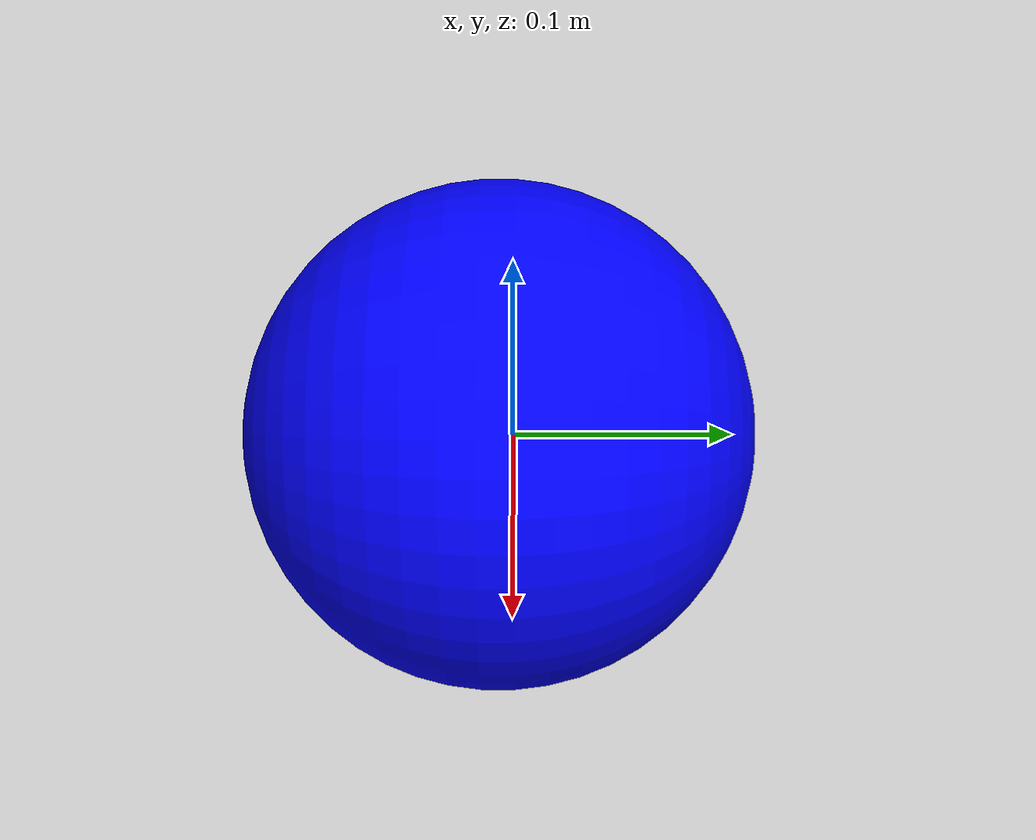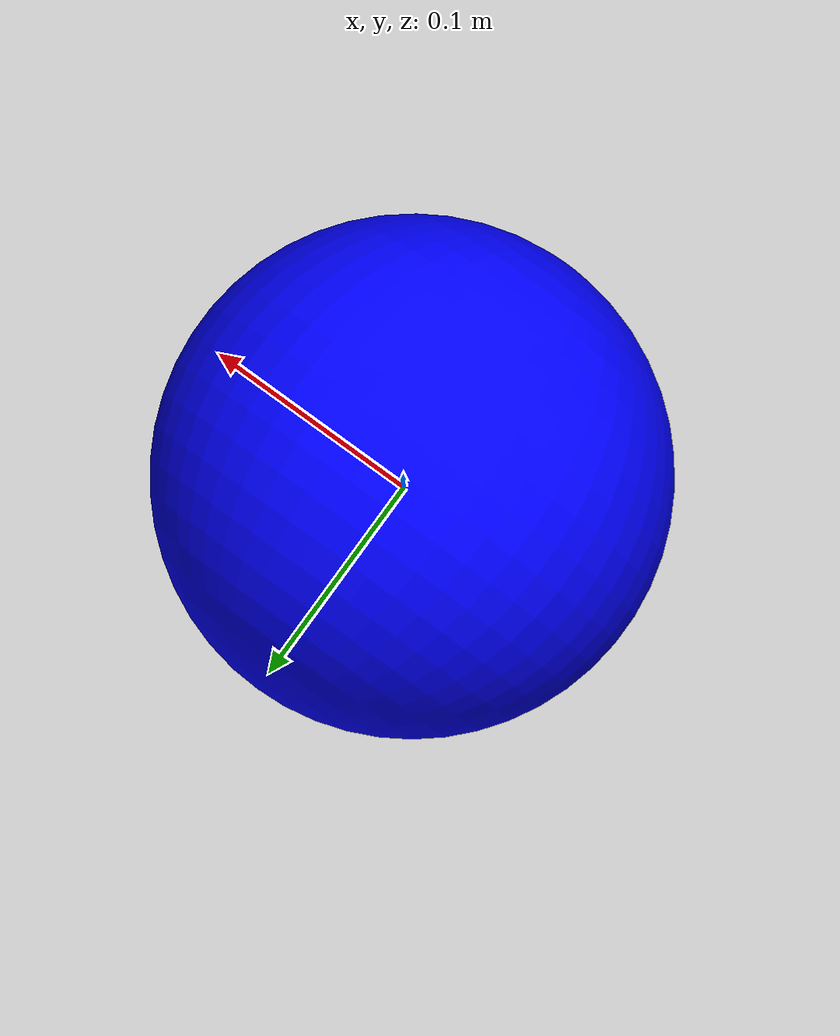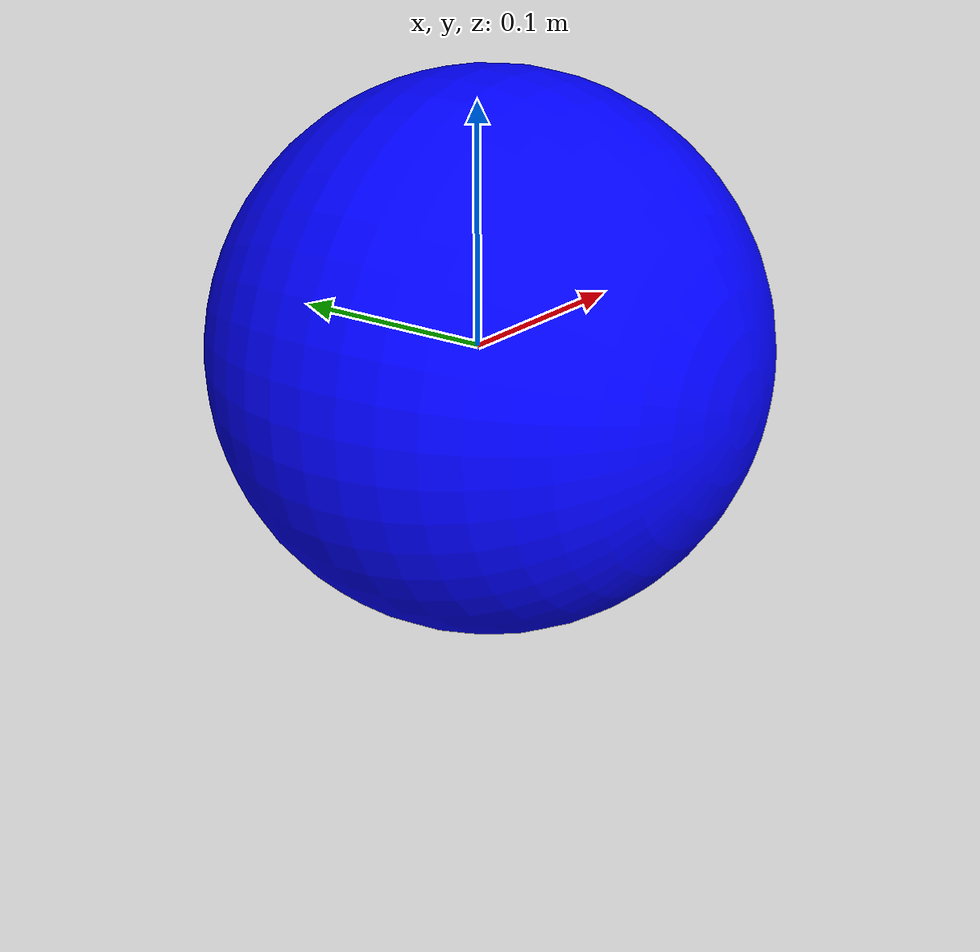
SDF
<?xml version="1.0" encoding="utf-8"?>
<sdf version="1.7">
  <model name="BlueCargo">
    <pose>0 0 0 0 0 0</pose>
    <link name="Ball">
      <gravity>1</gravity>
      <self_collide>0</self_collide>
      <pose>0 0 0 0 0 0</pose>
      <must_be_base_link>1</must_be_base_link>
      <velocity_decay>
        <linear>0.00</linear>
        <angular>0.01</angular>
      </velocity_decay>

      <inertial>
        <mass>0.1</mass>
        <pose>0 0 0 0 0 0</pose>
        <inertia>
          <ixx>0.0</ixx>
          <ixy>0</ixy>
          <ixz>0</ixz>
          <iyy>0.0</iyy>
          <iyz>0</iyz>
          <izz>0.0</izz>
        </inertia>

      </inertial>

      <collision name="Ball_collision">
        <pose>0 -0.12065 0 0 0 0</pose>
        <geometry>
          <mesh>
            <scale>.95 .95 .95</scale>
            <uri>model://BlueCargo/meshes/Ball_col.STL</uri>
          </mesh>
        </geometry>
       <surface>
        <bounce>
          <restitution_coeeficient>0.5</restitution_coeeficient>
        </bounce>
        <friction>
          <ode>
            <mu>1</mu>
            <mu2>1</mu2>
          </ode>
        </friction>
        <contact>
          <elastic_modulus>3</elastic_modulus>
          <ode>
            <max_vel>10</max_vel>
            <soft_cfm>2.0</soft_cfm>
            <kd>1</kd>
            <kp>1e6</kp>
            <min_depth>0.0001</min_depth>
          </ode>
        </contact>
		  </surface>
      </collision>
      <visual name="Ball_visual">
        <pose>0 -0.12065 0 0 0 0</pose>
        <material>
          <ambient>0 0 1 1</ambient>
          <diffuse>0 0 1 1</diffuse>
        </material>
        <geometry>
          <mesh>
            <scale>.95 .95 .95</scale>
            <uri>model://BlueCargo/meshes/Ball.STL</uri>
          </mesh>
        </geometry>
      </visual>
    </link>
  </model>
</sdf>
